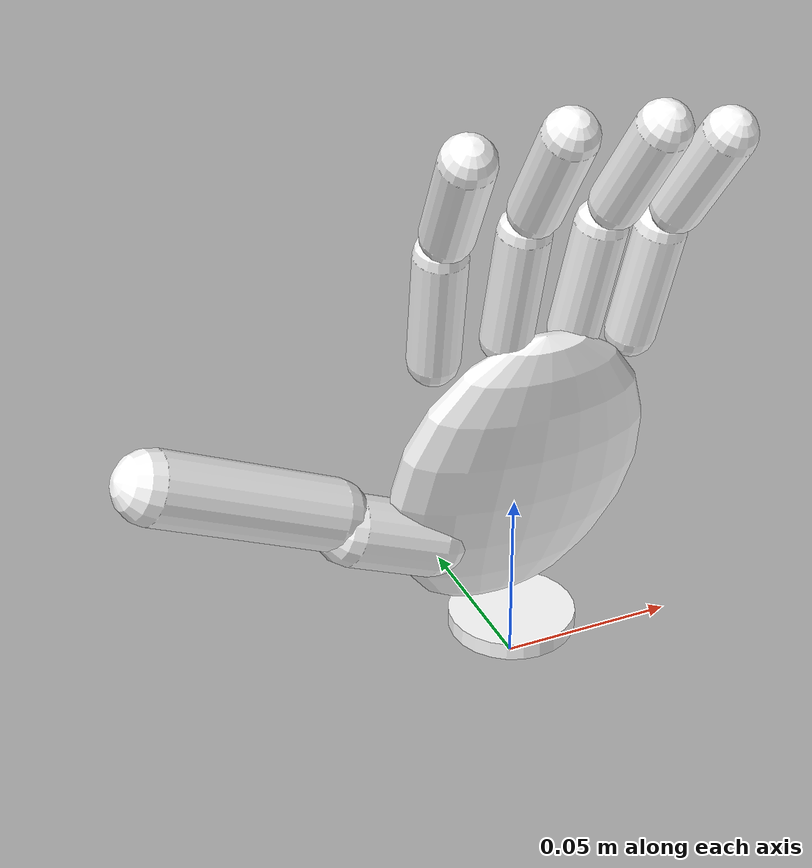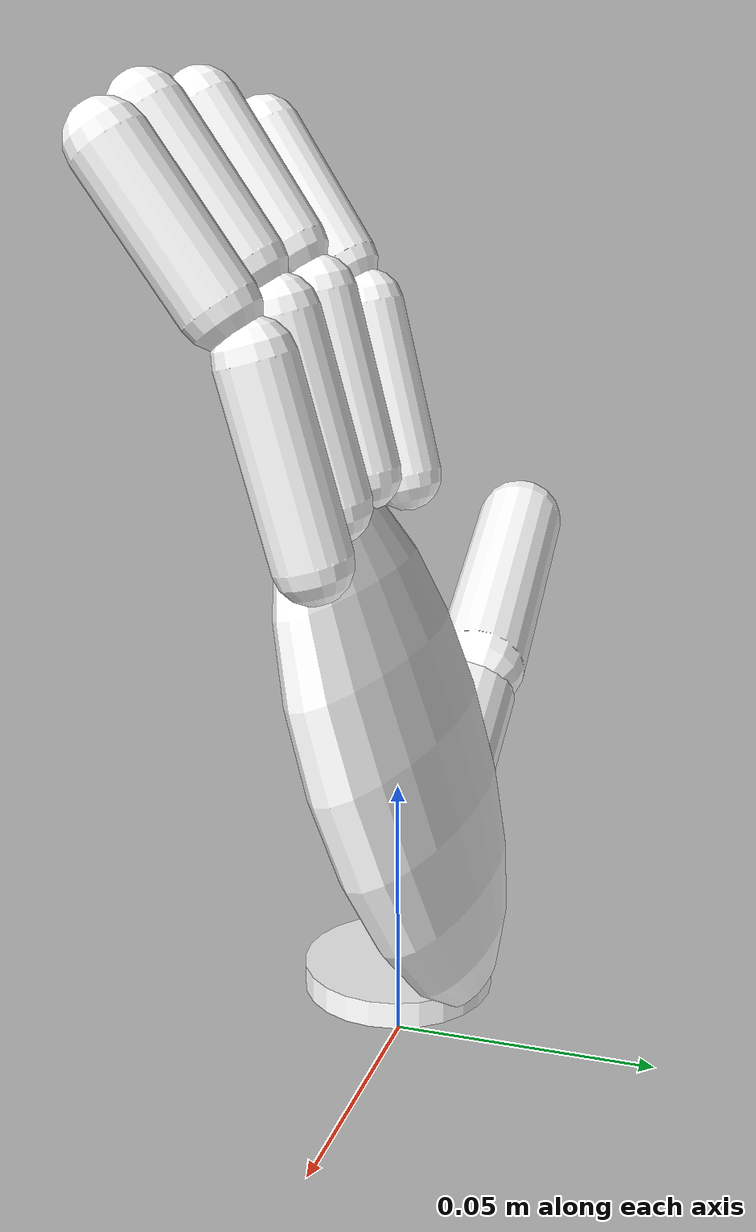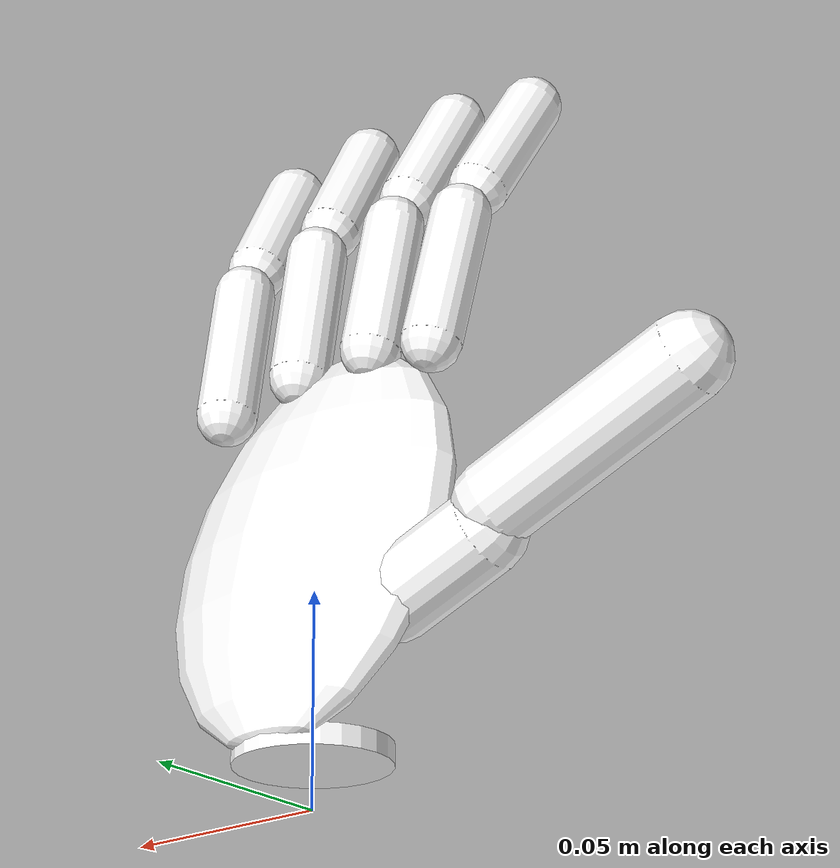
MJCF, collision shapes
<mujoco model="ability_hand">
  <compiler angle="radian" meshdir="./assets" autolimits="true"/>

  <default>
    <default class="ability_hand">

      <!--Visual Meshes-->
      <default class="visual">
        <geom mass="0" type="mesh" contype="0" conaffinity="0" group="1" rgba="0.1 0.1 0.1 1"/>

        <default class="wrist_visual">
          <geom mesh="wrist_mesh" rgba ="0 0 0 1"/>
        </default>

        <default class="palm_visual">
          <geom pos="-0.0240477 0.00378125 0.0323296" quat="0.0442297 0.00061027 -0.999021 -2.70192e-05" mesh="palm_mesh"/>
        </default>

        <default class="finger_visual">
          <geom rgba="0.15 0.15 0.15 1"/>

          <default class="finger_prox_vis">
            <geom pos="0.0384727 0.0032577 0" quat="0.999108 0 0 0.0422244" mesh="finger_prox_mesh"/>
          </default>

          <default class="finger_int_dist_vis">
            <geom pos="0.0091241 0 0" mesh="finger_int_dist_mesh"/>
          </default>

          <default class="thumb_metacarp_vis">
              <geom pos="0.0278284 0 0.0147507" quat="0.608761 0.793353 0 0" mesh="thumb_metacarp_mesh"/>
          </default>

          <default class="thumb_prox_dist_vis">
            <geom pos="0.0651867 0.0233402 0.00393483" quat="3.21978e-07 -0.985259 -0.171069 5.59046e-08" mesh="thumb_prox_dist_mesh"/>
          </default>
        </default>
      </default>
      <!--/visual-->

      <!--Collisions Primitives-->
      <default class="collisions">
        <geom rgba="1 1 1 0.2" group="3" solref=".01 .99" solimp=".95 .99 .002"/>
        <default class="wrist_collision">
          <geom type="cylinder" pos="0 0 0.0025" size="0.018 0.0025" mass="0.01591"/>
        </default>

        <default class="palm_collision">
          <geom type="ellipsoid" quat="0.996 0.155 0 0" pos="0 0 0.05" size="0.037 0.012 0.052" solref=".01 1" solimp=".98 .995 .0005" mass="0.3592"/>
        </default>

        <default class="proximal_collision">
          <geom type="capsule" quat="0.707 0 0.707 0" pos="0.015 0.002 0" size="0.007 0.017" mass="0.00636"/>
        </default>

        <default class="int_dist_collision">
          <geom type="capsule" pos="0.016 -0.011 0" euler="1.5708 -1.9943951023931953 0" size="0.007 0.015" mass="0.006"/>
        </default>

        <default class="thumb_metacarp_collision">
          <geom type="capsule" pos="0.013 0 0.005" quat="0.9238795325112866 0.1 0.6526834323650898 0" size="0.010 0.013" mass="0.002"/>
        </default>

        <default class="thumb_prox_collision">
          <geom type="capsule" pos="0.027 0.01 0.005" euler="1.6708 -1.2 0" size="0.010 0.027" mass="0.06"/>
        </default>
      </default>

      <!--Joints-->
      <default class="joints">
        <joint type="hinge" pos="0 0 0" axis="0 0 1" damping="0.01" frictionloss="0.1"/>
        <position kp="1" kv="0" ctrllimited="true"/>

        <default class="finger_mcp_joint">
          <joint range="0 1.74"/>
          <position ctrlrange="0 1.74"/>
        </default>

        <default class="finger_pip_joint">
          <joint range="0.766 2.61"/>
          <position ctrlrange="0.766 2.61"/>
        </default>

        <default class="thumb_mcp_joint">
          <joint range="0 1.91"/>
          <position ctrlrange="0 1.91"/>
        </default>

        <default class="thumb_cmc_joint">
          <joint range="-2.09 0"/>
          <position ctrlrange="-2.09 0"/>
        </default>

      </default>
    </default>
  </default>

  <asset>
    <mesh name="wrist_mesh" file="wristmesh.STL"/>
    <mesh name="palm_mesh" file="FB_palm_ref_MIR.STL"/>
    <mesh name="finger_prox_mesh" file="idx-F1.STL"/>
    <mesh name="finger_int_dist_mesh" file="idx-F2.STL"/>
    <mesh name="thumb_metacarp_mesh" file="thumb-F1-MIR.STL"/>
    <mesh name="thumb_prox_dist_mesh" file="thumb-F2.STL"/>
  </asset>

  <worldbody>

    <body name="ability_hand" pos="0 0 0.01" childclass="ability_hand">
      <joint type="free" name="base joint"/>
      <geom class="wrist_visual"/>
      <geom class="wrist_collision"/>
      <geom class="palm_visual"/>
      <geom class="palm_collision"/>
      <!--Index-->
      <body name="index_prox" pos="-0.0279216 -0.00927034 0.0958706" quat="0.685906 0.0469401 -0.714459 -0.129917">
          <joint class="finger_mcp_joint" name="index_mcp"/>
          <geom class="proximal_collision"/>
          <geom class="finger_prox_vis"/>
          <body name="index_int_dist" pos="0.0384727 0.0032577 0" quat="0.999108 0 0 0.0422244">
            <joint class="finger_pip_joint" name="index_pip"/>
            <geom class="int_dist_collision"/>
            <geom class="finger_int_dist_vis"/>
          </body>
      </body>
      <!--Middle-->
      <body name="middle_prox" pos="-0.00841718 -0.0115172 0.0990634" quat="0.704562 0.0715738 -0.698395 -0.103508">
          <joint class="finger_mcp_joint" name="middle_mcp"/>
          <geom class="proximal_collision"/>
          <geom class="finger_prox_vis"/>
          <body name="middle_int_dist" pos="0.0384727 0.0032577 0" quat="0.999108 0 0 0.0422244">
            <joint class="finger_pip_joint" name="middle_pip"/>
            <geom class="int_dist_collision"/>
            <geom class="finger_int_dist_vis"/>
          </body>
      </body>
      <!--Ring-->
      <body name="ring_prox" pos="0.0117529 -0.0103946 0.0967038" quat="0.721351 0.0986547 -0.681173 -0.0769649">
          <joint class="finger_mcp_joint" name="ring_mcp"/>
          <geom class="proximal_collision"/>
          <geom class="finger_prox_vis"/>
          <body name="ring_int_dist" pos="0.0384727 0.0032577 0" quat="0.999108 0 0 0.0422244">
            <joint class="finger_pip_joint" name="ring_pip"/>
            <geom class="int_dist_collision"/>
            <geom class="finger_int_dist_vis"/>
          </body>
      </body>
      <!--Pinky-->
      <body name="pinky_prox" pos="0.0308633 -0.00716283 0.0907346" quat="0.719226 0.122363 -0.681748 -0.0544096">
          <joint class="finger_mcp_joint" name="pinky_mcp"/>
          <geom class="proximal_collision"/>
          <geom class="finger_prox_vis"/>
          <body name="pinky_int_dist" pos="0.0384727 0.0032577 0" quat="0.999108 0 0 0.0422244">
            <joint class="finger_pip_joint" name="pinky_pip"/>
            <geom class="int_dist_collision"/>
            <geom class="finger_int_dist_vis"/>
          </body>
      </body>
      <!--Thumb-->
      <body name="thumb_metacarp" pos="-0.0240477 0.00378125 0.0323296" quat="-0.0947972 0.0440301 -0.00419696 0.994514">
        <joint class="thumb_cmc_joint" name="thumb_cmc"/>
        <geom class="thumb_metacarp_vis"/>
        <geom class="thumb_metacarp_collision"/>
        <body name="thumb_mcp" pos="0.0278284 0 0.0147507" quat="0.608761 0.793353 0 0">
          <joint class="thumb_mcp_joint" name="thumb_mcp"/>
          <geom class="thumb_prox_collision"/>
          <geom class="thumb_prox_dist_vis"/>
        </body>
      </body>
    </body>

  </worldbody>

  <!--Actuators-->
  <actuator>
    <position class="finger_mcp_joint" name="index_mcp_actuator" joint="index_mcp"/>
    <position class="finger_pip_joint" name="_index_pip_actuator" joint="index_pip"/>
    <position class="finger_mcp_joint" name="middle_mcp_actuator" joint="middle_mcp"/>
    <position class="finger_pip_joint" name="_middle_pip_actuator" joint="middle_pip"/>
    <position class="finger_mcp_joint" name="ring_mcp_actuator" joint="ring_mcp"/>
    <position class="finger_pip_joint" name="_ring_pip_actuator" joint="ring_pip"/>
    <position class="finger_mcp_joint" name="pinky_mcp_actuator" joint="pinky_mcp"/>
    <position class="finger_pip_joint" name="_pinky_pip_actuator" joint="pinky_pip"/>
    <position class="thumb_mcp_joint" name="thumb_flexor_actuator" joint="thumb_mcp"/>
    <position class="thumb_cmc_joint" name="thumb_rotator_actuator" joint="thumb_cmc"/>
  </actuator>

</mujoco>
